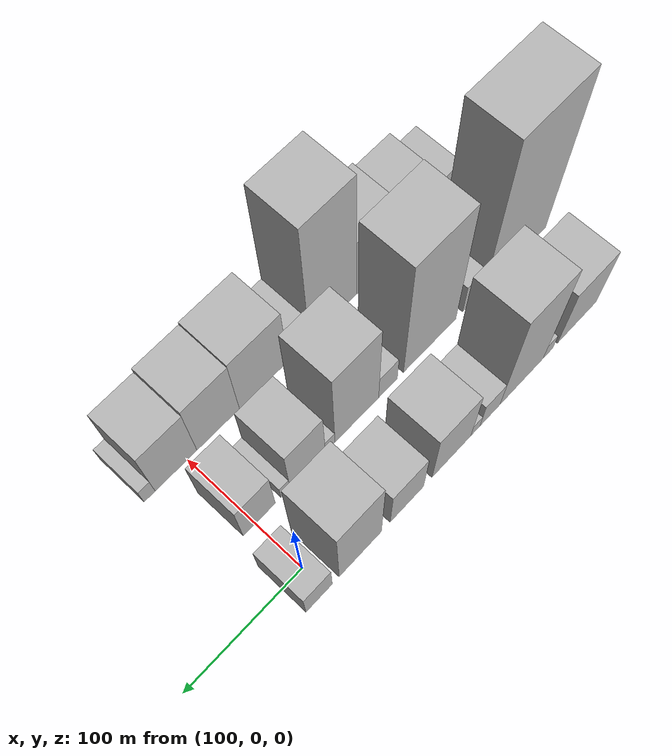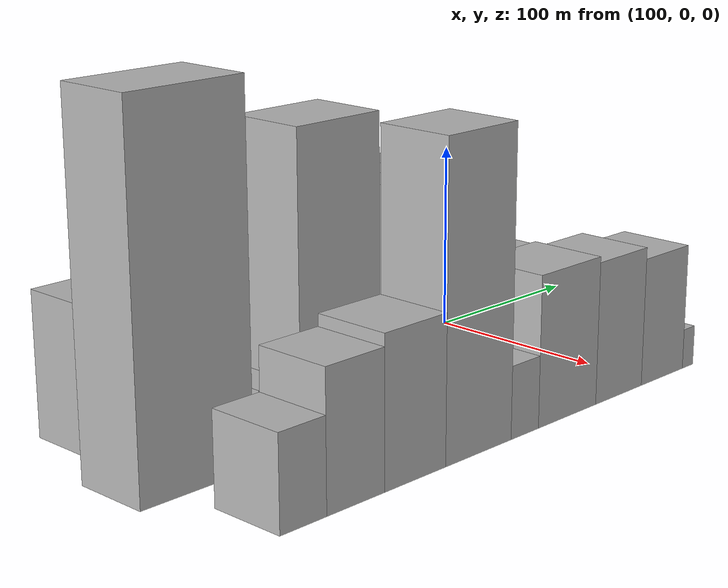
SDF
<sdf version="1.6">
 <world name="default">
  <model name="building_9">
   <static>1</static>
   <pose>100.0000 -239.4780 0 0.000000 0.000000 0.000000</pose>
   <link name="link">
    <pose>0 0 36.00 0 0 0</pose>
    <collision name="collision"><geometry><box><size>40.0000 40.0774 72.0000</size></box></geometry></collision>
    <visual name="visual">
     <cast_shadows>0</cast_shadows>
     <geometry><box><size>40.0000 40.0774 72.0000</size></box></geometry>
     <material>
      <script>
       <uri>model://HANNAS_wall/materials/scripts</uri>
       <uri>model://HANNAS_wall/materials/textures</uri>
       <name>vrc/HANNAS_wall</name>
      </script>
     </material>
    </visual>
   </link>
  </model>
  <model name="building_10">
   <static>1</static>
   <pose>100.0000 -209.4909 0 0.000000 0.000000 0.000000</pose>
   <link name="link">
    <pose>0 0 10.50 0 0 0</pose>
    <collision name="collision"><geometry><box><size>40.0000 9.8969 21.0000</size></box></geometry></collision>
    <visual name="visual">
     <cast_shadows>0</cast_shadows>
     <geometry><box><size>40.0000 9.8969 21.0000</size></box></geometry>
     <material>
      <script>
       <uri>model://HANNAS_wall/materials/scripts</uri>
       <uri>model://HANNAS_wall/materials/textures</uri>
       <name>vrc/HANNAS_wall</name>
      </script>
     </material>
    </visual>
   </link>
  </model>
  <model name="building_11">
   <static>1</static>
   <pose>100.0000 -182.8452 0 0.000000 0.000000 0.000000</pose>
   <link name="link">
    <pose>0 0 64.50 0 0 0</pose>
    <collision name="collision"><geometry><box><size>40.0000 43.3944 129.0000</size></box></geometry></collision>
    <visual name="visual">
     <cast_shadows>0</cast_shadows>
     <geometry><box><size>40.0000 43.3944 129.0000</size></box></geometry>
     <material>
      <script>
       <uri>model://HANNAS_wall/materials/scripts</uri>
       <uri>model://HANNAS_wall/materials/textures</uri>
       <name>vrc/HANNAS_wall</name>
      </script>
     </material>
    </visual>
   </link>
  </model>
  <model name="building_12">
   <static>1</static>
   <pose>100.0000 -151.3688 0 0.000000 0.000000 0.000000</pose>
   <link name="link">
    <pose>0 0 18.00 0 0 0</pose>
    <collision name="collision"><geometry><box><size>40.0000 19.5585 36.0000</size></box></geometry></collision>
    <visual name="visual">
     <cast_shadows>0</cast_shadows>
     <geometry><box><size>40.0000 19.5585 36.0000</size></box></geometry>
     <material>
      <script>
       <uri>model://HANNAS_wall/materials/scripts</uri>
       <uri>model://HANNAS_wall/materials/textures</uri>
       <name>vrc/HANNAS_wall</name>
      </script>
     </material>
    </visual>
   </link>
  </model>
  <model name="building_13">
   <static>1</static>
   <pose>100.0000 -137.1788 0 0.000000 0.000000 0.000000</pose>
   <link name="link">
    <pose>0 0 9.00 0 0 0</pose>
    <collision name="collision"><geometry><box><size>40.0000 8.8215 18.0000</size></box></geometry></collision>
    <visual name="visual">
     <cast_shadows>0</cast_shadows>
     <geometry><box><size>40.0000 8.8215 18.0000</size></box></geometry>
     <material>
      <script>
       <uri>model://HANNAS_wall/materials/scripts</uri>
       <uri>model://HANNAS_wall/materials/textures</uri>
       <name>vrc/HANNAS_wall</name>
      </script>
     </material>
    </visual>
   </link>
  </model>
  <model name="building_14">
   <static>1</static>
   <pose>100.0000 -114.2665 0 0.000000 0.000000 0.000000</pose>
   <link name="link">
    <pose>0 0 36.00 0 0 0</pose>
    <collision name="collision"><geometry><box><size>40.0000 37.0031 72.0000</size></box></geometry></collision>
    <visual name="visual">
     <cast_shadows>0</cast_shadows>
     <geometry><box><size>40.0000 37.0031 72.0000</size></box></geometry>
     <material>
      <script>
       <uri>model://HANNAS_wall/materials/scripts</uri>
       <uri>model://HANNAS_wall/materials/textures</uri>
       <name>vrc/HANNAS_wall</name>
      </script>
     </material>
    </visual>
   </link>
  </model>
  <model name="building_15">
   <static>1</static>
   <pose>100.0000 -72.3574 0 0.000000 0.000000 0.000000</pose>
   <link name="link">
    <pose>0 0 28.50 0 0 0</pose>
    <collision name="collision"><geometry><box><size>40.0000 30.8151 57.0000</size></box></geometry></collision>
    <visual name="visual">
     <cast_shadows>0</cast_shadows>
     <geometry><box><size>40.0000 30.8151 57.0000</size></box></geometry>
     <material>
      <script>
       <uri>model://HANNAS_wall/materials/scripts</uri>
       <uri>model://HANNAS_wall/materials/textures</uri>
       <name>vrc/HANNAS_wall</name>
      </script>
     </material>
    </visual>
   </link>
  </model>
  <model name="building_16">
   <static>1</static>
   <pose>100.0000 -30.0958 0 0.000000 0.000000 0.000000</pose>
   <link name="link">
    <pose>0 0 49.50 0 0 0</pose>
    <collision name="collision"><geometry><box><size>40.0000 37.7082 99.0000</size></box></geometry></collision>
    <visual name="visual">
     <cast_shadows>0</cast_shadows>
     <geometry><box><size>40.0000 37.7082 99.0000</size></box></geometry>
     <material>
      <script>
       <uri>model://HANNAS_wall/materials/scripts</uri>
       <uri>model://HANNAS_wall/materials/textures</uri>
       <name>vrc/HANNAS_wall</name>
      </script>
     </material>
    </visual>
   </link>
  </model>
  <model name="building_17">
   <static>1</static>
   <pose>100.0000 6.1590 0 0.000000 0.000000 0.000000</pose>
   <link name="link">
    <pose>0 0 19.50 0 0 0</pose>
    <collision name="collision"><geometry><box><size>40.0000 22.8013 39.0000</size></box></geometry></collision>
    <visual name="visual">
     <cast_shadows>0</cast_shadows>
     <geometry><box><size>40.0000 22.8013 39.0000</size></box></geometry>
     <material>
      <script>
       <uri>model://HANNAS_wall/materials/scripts</uri>
       <uri>model://HANNAS_wall/materials/textures</uri>
       <name>vrc/HANNAS_wall</name>
      </script>
     </material>
    </visual>
   </link>
  </model>
  <model name="building_42">
   <static>1</static>
   <pose>160.0000 -248.3981 0 0.000000 0.000000 0.000000</pose>
   <link name="link">
    <pose>0 0 88.50 0 0 0</pose>
    <collision name="collision"><geometry><box><size>40.0000 63.8161 177.0000</size></box></geometry></collision>
    <visual name="visual">
     <cast_shadows>0</cast_shadows>
     <geometry><box><size>40.0000 63.8161 177.0000</size></box></geometry>
     <material>
      <script>
       <uri>model://HANNAS_wall/materials/scripts</uri>
       <uri>model://HANNAS_wall/materials/textures</uri>
       <name>vrc/HANNAS_wall</name>
      </script>
     </material>
    </visual>
   </link>
  </model>
  <model name="building_43">
   <static>1</static>
   <pose>160.0000 -203.3899 0 0.000000 0.000000 0.000000</pose>
   <link name="link">
    <pose>0 0 18.00 0 0 0</pose>
    <collision name="collision"><geometry><box><size>40.0000 18.2003 36.0000</size></box></geometry></collision>
    <visual name="visual">
     <cast_shadows>0</cast_shadows>
     <geometry><box><size>40.0000 18.2003 36.0000</size></box></geometry>
     <material>
      <script>
       <uri>model://HANNAS_wall/materials/scripts</uri>
       <uri>model://HANNAS_wall/materials/textures</uri>
       <name>vrc/HANNAS_wall</name>
      </script>
     </material>
    </visual>
   </link>
  </model>
  <model name="building_44">
   <static>1</static>
   <pose>160.0000 -161.5203 0 0.000000 0.000000 0.000000</pose>
   <link name="link">
    <pose>0 0 75.00 0 0 0</pose>
    <collision name="collision"><geometry><box><size>40.0000 51.5389 150.0000</size></box></geometry></collision>
    <visual name="visual">
     <cast_shadows>0</cast_shadows>
     <geometry><box><size>40.0000 51.5389 150.0000</size></box></geometry>
     <material>
      <script>
       <uri>model://HANNAS_wall/materials/scripts</uri>
       <uri>model://HANNAS_wall/materials/textures</uri>
       <name>vrc/HANNAS_wall</name>
      </script>
     </material>
    </visual>
   </link>
  </model>
  <model name="building_45">
   <static>1</static>
   <pose>160.0000 -120.8886 0 0.000000 0.000000 0.000000</pose>
   <link name="link">
    <pose>0 0 16.50 0 0 0</pose>
    <collision name="collision"><geometry><box><size>40.0000 17.7243 33.0000</size></box></geometry></collision>
    <visual name="visual">
     <cast_shadows>0</cast_shadows>
     <geometry><box><size>40.0000 17.7243 33.0000</size></box></geometry>
     <material>
      <script>
       <uri>model://HANNAS_wall/materials/scripts</uri>
       <uri>model://HANNAS_wall/materials/textures</uri>
       <name>vrc/HANNAS_wall</name>
      </script>
     </material>
    </visual>
   </link>
  </model>
  <model name="building_46">
   <static>1</static>
   <pose>160.0000 -91.6735 0 0.000000 0.000000 0.000000</pose>
   <link name="link">
    <pose>0 0 54.00 0 0 0</pose>
    <collision name="collision"><geometry><box><size>40.0000 40.7060 108.0000</size></box></geometry></collision>
    <visual name="visual">
     <cast_shadows>0</cast_shadows>
     <geometry><box><size>40.0000 40.7060 108.0000</size></box></geometry>
     <material>
      <script>
       <uri>model://HANNAS_wall/materials/scripts</uri>
       <uri>model://HANNAS_wall/materials/textures</uri>
       <name>vrc/HANNAS_wall</name>
      </script>
     </material>
    </visual>
   </link>
  </model>
  <model name="building_47">
   <static>1</static>
   <pose>160.0000 -66.9246 0 0.000000 0.000000 0.000000</pose>
   <link name="link">
    <pose>0 0 9.00 0 0 0</pose>
    <collision name="collision"><geometry><box><size>40.0000 8.7919 18.0000</size></box></geometry></collision>
    <visual name="visual">
     <cast_shadows>0</cast_shadows>
     <geometry><box><size>40.0000 8.7919 18.0000</size></box></geometry>
     <material>
      <script>
       <uri>model://HANNAS_wall/materials/scripts</uri>
       <uri>model://HANNAS_wall/materials/textures</uri>
       <name>vrc/HANNAS_wall</name>
      </script>
     </material>
    </visual>
   </link>
  </model>
  <model name="building_48">
   <static>1</static>
   <pose>160.0000 -46.6002 0 0.000000 0.000000 0.000000</pose>
   <link name="link">
    <pose>0 0 31.50 0 0 0</pose>
    <collision name="collision"><geometry><box><size>40.0000 31.8569 63.0000</size></box></geometry></collision>
    <visual name="visual">
     <cast_shadows>0</cast_shadows>
     <geometry><box><size>40.0000 31.8569 63.0000</size></box></geometry>
     <material>
      <script>
       <uri>model://HANNAS_wall/materials/scripts</uri>
       <uri>model://HANNAS_wall/materials/textures</uri>
       <name>vrc/HANNAS_wall</name>
      </script>
     </material>
    </visual>
   </link>
  </model>
  <model name="building_49">
   <static>1</static>
   <pose>160.0000 -26.6145 0 0.000000 0.000000 0.000000</pose>
   <link name="link">
    <pose>0 0 9.00 0 0 0</pose>
    <collision name="collision"><geometry><box><size>40.0000 8.1146 18.0000</size></box></geometry></collision>
    <visual name="visual">
     <cast_shadows>0</cast_shadows>
     <geometry><box><size>40.0000 8.1146 18.0000</size></box></geometry>
     <material>
      <script>
       <uri>model://HANNAS_wall/materials/scripts</uri>
       <uri>model://HANNAS_wall/materials/textures</uri>
       <name>vrc/HANNAS_wall</name>
      </script>
     </material>
    </visual>
   </link>
  </model>
  <model name="building_50">
   <static>1</static>
   <pose>160.0000 -3.5424 0 0.000000 0.000000 0.000000</pose>
   <link name="link">
    <pose>0 0 27.00 0 0 0</pose>
    <collision name="collision"><geometry><box><size>40.0000 28.0295 54.0000</size></box></geometry></collision>
    <visual name="visual">
     <cast_shadows>0</cast_shadows>
     <geometry><box><size>40.0000 28.0295 54.0000</size></box></geometry>
     <material>
      <script>
       <uri>model://HANNAS_wall/materials/scripts</uri>
       <uri>model://HANNAS_wall/materials/textures</uri>
       <name>vrc/HANNAS_wall</name>
      </script>
     </material>
    </visual>
   </link>
  </model>
  <model name="building_85">
   <static>1</static>
   <pose>220.0000 -243.2221 0 0.000000 0.000000 0.000000</pose>
   <link name="link">
    <pose>0 0 22.50 0 0 0</pose>
    <collision name="collision"><geometry><box><size>40.0000 26.6300 45.0000</size></box></geometry></collision>
    <visual name="visual">
     <cast_shadows>0</cast_shadows>
     <geometry><box><size>40.0000 26.6300 45.0000</size></box></geometry>
     <material>
      <script>
       <uri>model://HANNAS_wall/materials/scripts</uri>
       <uri>model://HANNAS_wall/materials/textures</uri>
       <name>vrc/HANNAS_wall</name>
      </script>
     </material>
    </visual>
   </link>
  </model>
  <model name="building_86">
   <static>1</static>
   <pose>220.0000 -212.4920 0 0.000000 0.000000 0.000000</pose>
   <link name="link">
    <pose>0 0 33.00 0 0 0</pose>
    <collision name="collision"><geometry><box><size>40.0000 34.8303 66.0000</size></box></geometry></collision>
    <visual name="visual">
     <cast_shadows>0</cast_shadows>
     <geometry><box><size>40.0000 34.8303 66.0000</size></box></geometry>
     <material>
      <script>
       <uri>model://HANNAS_wall/materials/scripts</uri>
       <uri>model://HANNAS_wall/materials/textures</uri>
       <name>vrc/HANNAS_wall</name>
      </script>
     </material>
    </visual>
   </link>
  </model>
  <model name="building_87">
   <static>1</static>
   <pose>220.0000 -175.4583 0 0.000000 0.000000 0.000000</pose>
   <link name="link">
    <pose>0 0 36.00 0 0 0</pose>
    <collision name="collision"><geometry><box><size>40.0000 39.2370 72.0000</size></box></geometry></collision>
    <visual name="visual">
     <cast_shadows>0</cast_shadows>
     <geometry><box><size>40.0000 39.2370 72.0000</size></box></geometry>
     <material>
      <script>
       <uri>model://HANNAS_wall/materials/scripts</uri>
       <uri>model://HANNAS_wall/materials/textures</uri>
       <name>vrc/HANNAS_wall</name>
      </script>
     </material>
    </visual>
   </link>
  </model>
  <model name="building_88">
   <static>1</static>
   <pose>220.0000 -133.1613 0 0.000000 0.000000 0.000000</pose>
   <link name="link">
    <pose>0 0 75.00 0 0 0</pose>
    <collision name="collision"><geometry><box><size>40.0000 45.3571 150.0000</size></box></geometry></collision>
    <visual name="visual">
     <cast_shadows>0</cast_shadows>
     <geometry><box><size>40.0000 45.3571 150.0000</size></box></geometry>
     <material>
      <script>
       <uri>model://HANNAS_wall/materials/scripts</uri>
       <uri>model://HANNAS_wall/materials/textures</uri>
       <name>vrc/HANNAS_wall</name>
      </script>
     </material>
    </visual>
   </link>
  </model>
  <model name="building_89">
   <static>1</static>
   <pose>220.0000 -100.4471 0 0.000000 0.000000 0.000000</pose>
   <link name="link">
    <pose>0 0 18.00 0 0 0</pose>
    <collision name="collision"><geometry><box><size>40.0000 20.0712 36.0000</size></box></geometry></collision>
    <visual name="visual">
     <cast_shadows>0</cast_shadows>
     <geometry><box><size>40.0000 20.0712 36.0000</size></box></geometry>
     <material>
      <script>
       <uri>model://HANNAS_wall/materials/scripts</uri>
       <uri>model://HANNAS_wall/materials/textures</uri>
       <name>vrc/HANNAS_wall</name>
      </script>
     </material>
    </visual>
   </link>
  </model>
  <model name="building_90">
   <static>1</static>
   <pose>220.0000 -68.2507 0 0.000000 0.000000 0.000000</pose>
   <link name="link">
    <pose>0 0 37.50 0 0 0</pose>
    <collision name="collision"><geometry><box><size>40.0000 44.3216 75.0000</size></box></geometry></collision>
    <visual name="visual">
     <cast_shadows>0</cast_shadows>
     <geometry><box><size>40.0000 44.3216 75.0000</size></box></geometry>
     <material>
      <script>
       <uri>model://HANNAS_wall/materials/scripts</uri>
       <uri>model://HANNAS_wall/materials/textures</uri>
       <name>vrc/HANNAS_wall</name>
      </script>
     </material>
    </visual>
   </link>
  </model>
  <model name="building_91">
   <static>1</static>
   <pose>220.0000 -27.2272 0 0.000000 0.000000 0.000000</pose>
   <link name="link">
    <pose>0 0 36.00 0 0 0</pose>
    <collision name="collision"><geometry><box><size>40.0000 37.7255 72.0000</size></box></geometry></collision>
    <visual name="visual">
     <cast_shadows>0</cast_shadows>
     <geometry><box><size>40.0000 37.7255 72.0000</size></box></geometry>
     <material>
      <script>
       <uri>model://HANNAS_wall/materials/scripts</uri>
       <uri>model://HANNAS_wall/materials/textures</uri>
       <name>vrc/HANNAS_wall</name>
      </script>
     </material>
    </visual>
   </link>
  </model>
  <model name="building_92">
   <static>1</static>
   <pose>220.0000 9.6811 0 0.000000 0.000000 0.000000</pose>
   <link name="link">
    <pose>0 0 33.00 0 0 0</pose>
    <collision name="collision"><geometry><box><size>40.0000 36.0911 66.0000</size></box></geometry></collision>
    <visual name="visual">
     <cast_shadows>0</cast_shadows>
     <geometry><box><size>40.0000 36.0911 66.0000</size></box></geometry>
     <material>
      <script>
       <uri>model://HANNAS_wall/materials/scripts</uri>
       <uri>model://HANNAS_wall/materials/textures</uri>
       <name>vrc/HANNAS_wall</name>
      </script>
     </material>
    </visual>
   </link>
  </model>
  <model name="building_93">
   <static>1</static>
   <pose>220.0000 32.4482 0 0.000000 0.000000 0.000000</pose>
   <link name="link">
    <pose>0 0 10.50 0 0 0</pose>
    <collision name="collision"><geometry><box><size>40.0000 9.4430 21.0000</size></box></geometry></collision>
    <visual name="visual">
     <cast_shadows>0</cast_shadows>
     <geometry><box><size>40.0000 9.4430 21.0000</size></box></geometry>
     <material>
      <script>
       <uri>model://HANNAS_wall/materials/scripts</uri>
       <uri>model://HANNAS_wall/materials/textures</uri>
       <name>vrc/HANNAS_wall</name>
      </script>
     </material>
    </visual>
   </link>
  </model>
 </world>
</sdf>
